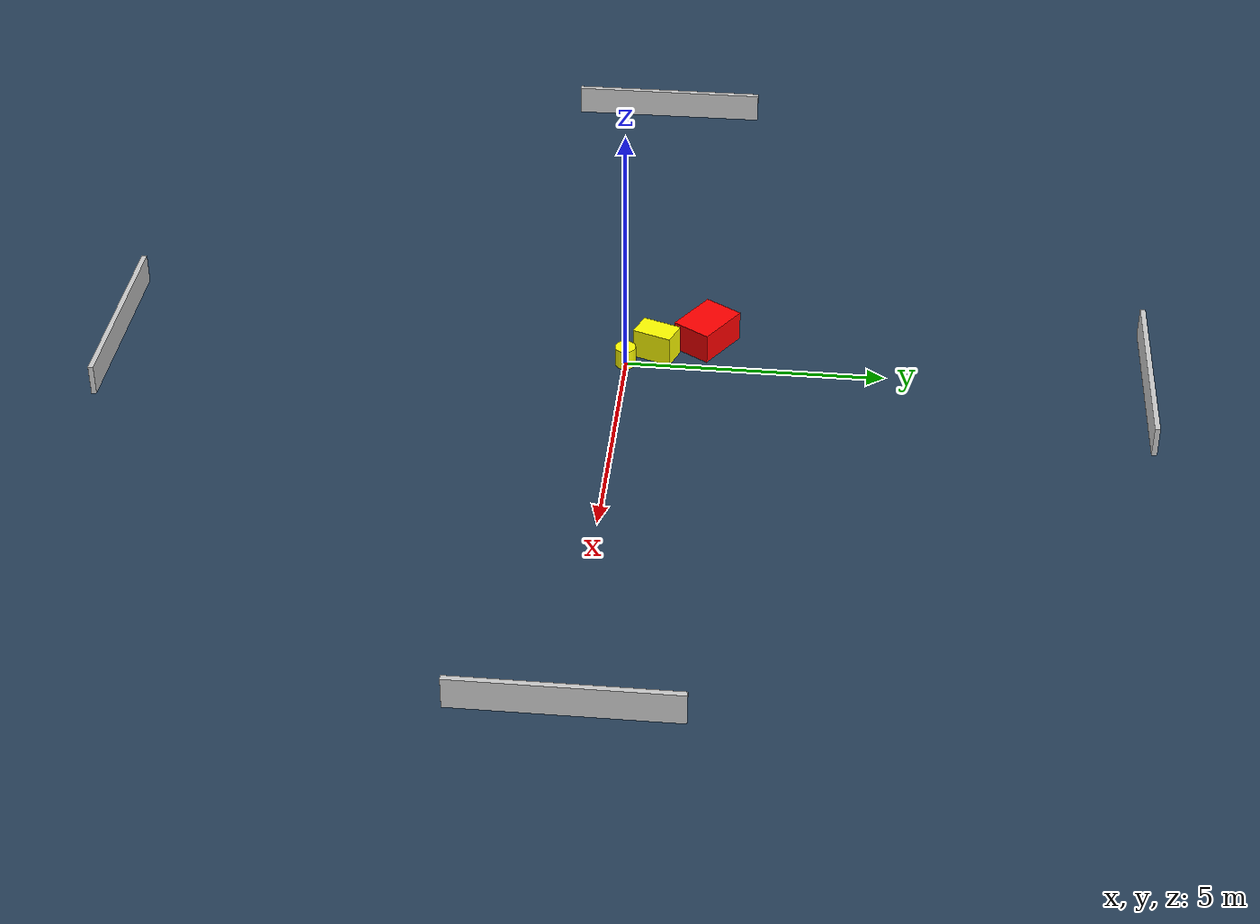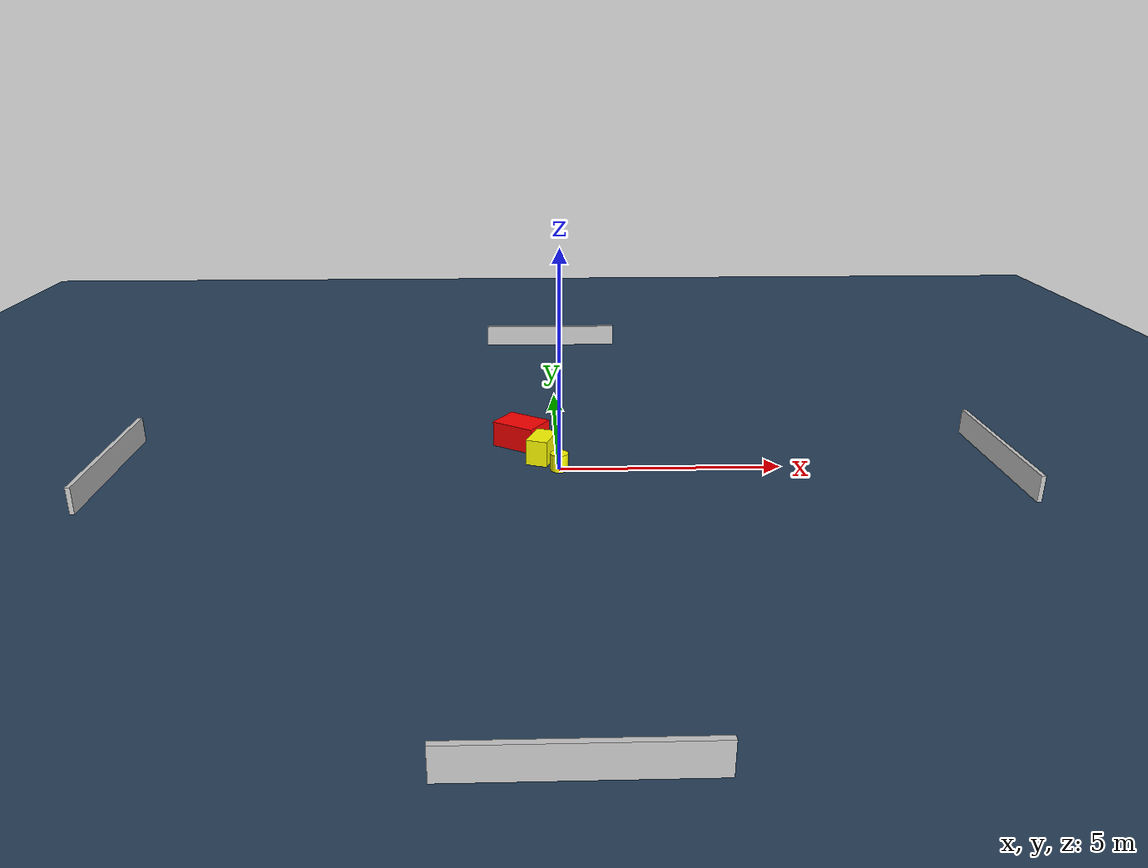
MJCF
<?xml version="1.0" ?>
<mujoco model="generated_environment">
  <option timestep="0.01" integrator="RK4" cone="elliptic"/>
  <default>
    <geom density="1"/>
  </default>
  <asset>
    <texture builtin="gradient" height="3072" name="skybox" rgb1="0.3 0.5 0.7" rgb2="0 0 0" type="skybox" width="512"/>
    <texture builtin="checker" height="300" name="groundplane" rgb1="0.2 0.3 0.4" rgb2="0.1 0.2 0.3" type="2d" width="300"/>
    <material name="groundplane" reflectance="0.2" texrepeat="5 5" texture="groundplane"/>
  </asset>
  <worldbody>
    <light dir="0 0 -1" directional="true" pos="0 0 1.5"/>
    <geom condim="3" friction="0.5 0.005 0.001" material="groundplane" name="floor" pos="0 0 0" size="0 0 0.05" type="plane"/>
    <body name="walls">
      <geom name="wall_1" condim="4" pos="-10.0 0.0 0.3" rgba="0.800000011920929 0.800000011920929 0.800000011920929 1.0" size="0.05 2.0 0.3" type="box"/>
      <geom name="wall_2" condim="4" pos="10.0 0.0 0.3" rgba="0.800000011920929 0.800000011920929 0.800000011920929 1.0" size="0.05 2.0 0.3" type="box"/>
      <geom name="wall_3" condim="4" pos="0.0 -10.0 0.3" rgba="0.800000011920929 0.800000011920929 0.800000011920929 1.0" size="2.0 0.05 0.3" type="box"/>
      <geom name="wall_4" condim="4" pos="0.0 10.0 0.3" rgba="0.800000011920929 0.800000011920929 0.800000011920929 1.0" size="2.0 0.05 0.3" type="box"/>
    </body>
    <body name="robot">
      <joint name="joint_x" type="slide" pos="0 0 0" axis="1 0 0"/>
      <joint name="joint_y" type="slide" pos="0 0 0" axis="0 1 0"/>
      <geom name="robot" type="cylinder" pos="0.0 0.0 0.2" size="0.2 0.2 0.0" mass="5.0" friction="1.0 0.005 0.0001" condim="4" rgba="1.0 1.0 0.0 1.0"/>
    </body>
    <body name="obstacle_1_movable">
      <geom name="obstacle_1_movable" condim="4" pos="-0.3821237723955531 0.5772941657828151 0.3" euler="0 0 339.9122714946625" friction="0.0 0.005 0.001" rgba="1.0 1.0 0.0 1.0" size="0.24824472746291276 0.38616779864152584 0.3" type="box" mass="0.1"/>
      <joint type="free"/>
    </body>
    <body name="obstacle_2_static">
      <geom name="obstacle_2_static" condim="4" pos="-0.8646071271619472 1.5256275524030258 0.3" euler="0 0 147.0633966486609" friction="0.0 0.005 0.001" rgba="1.0 0.0 0.0 1.0" size="0.5354280500851122 0.39660862486906745 0.3" type="box"/>
    </body>
  </worldbody>
  <actuator>
    <motor name="actuator_x" joint="joint_x" gear="1" ctrlrange="-1 1"/>
    <motor name="actuator_y" joint="joint_y" gear="1" ctrlrange="-1 1"/>
  </actuator>
</mujoco>
